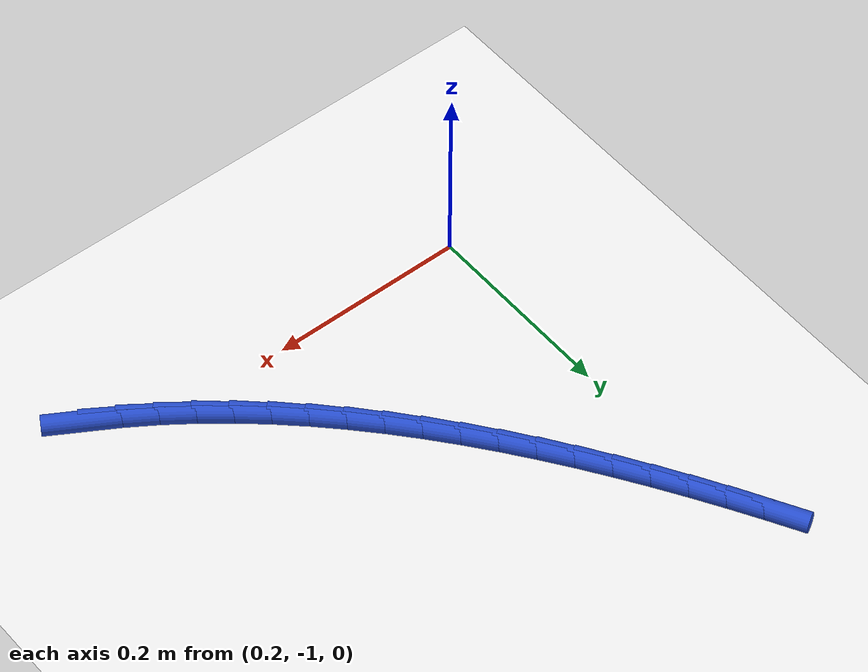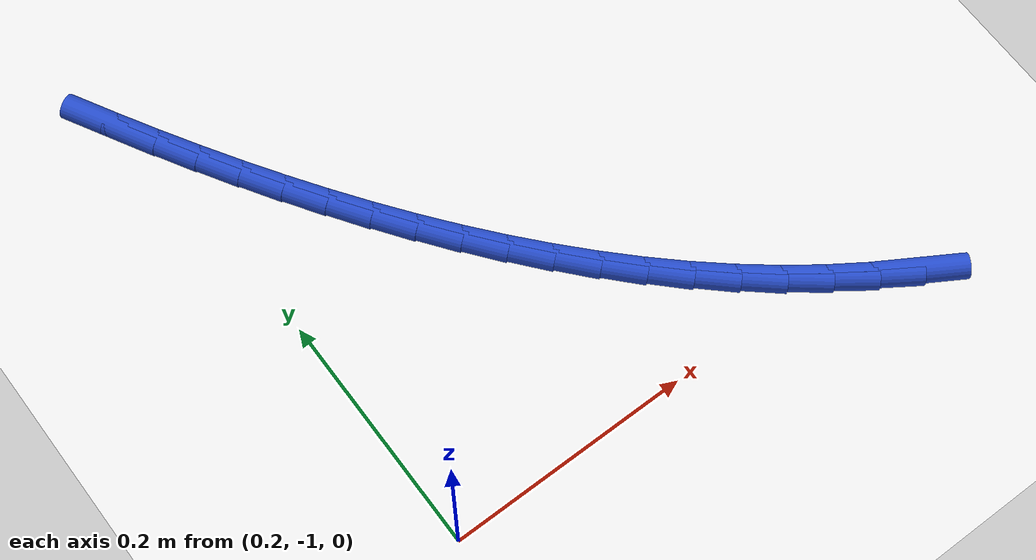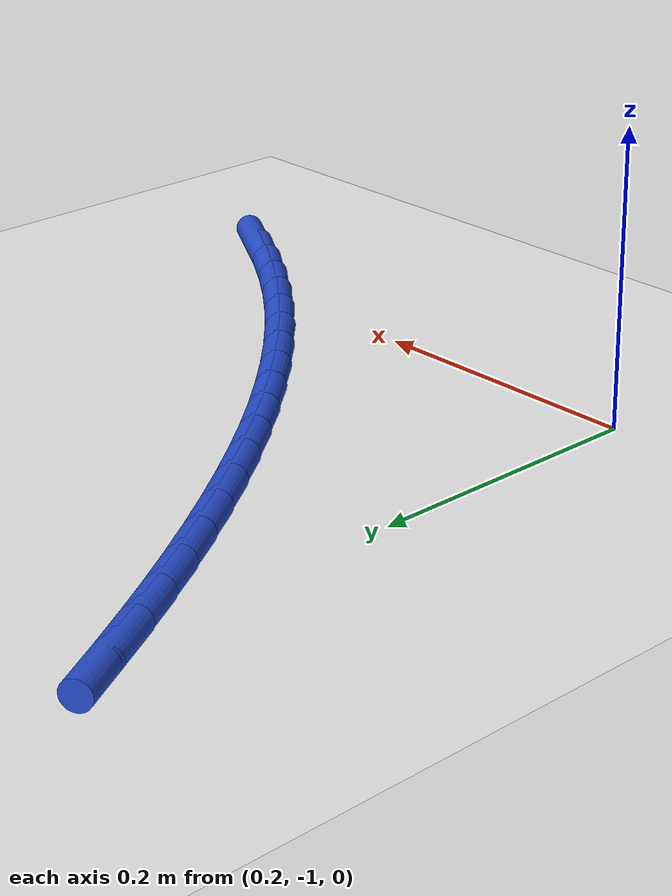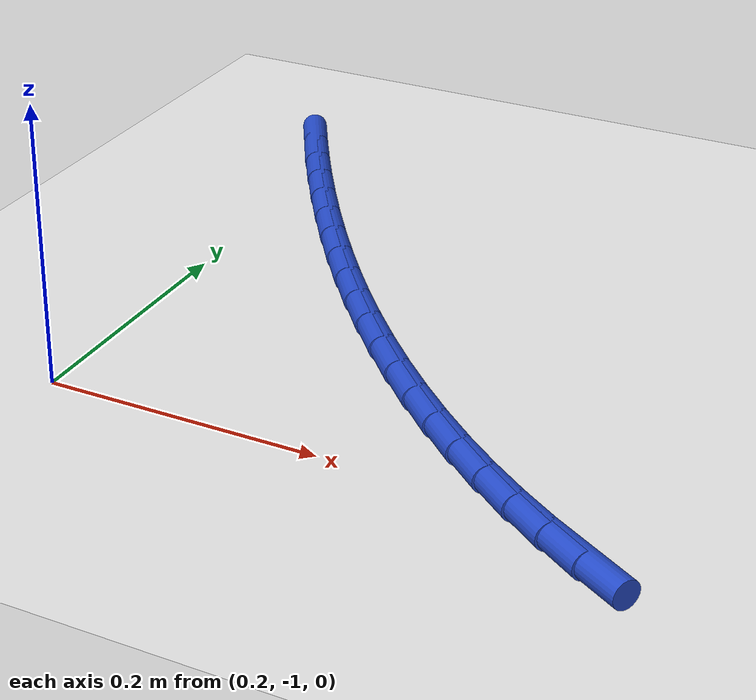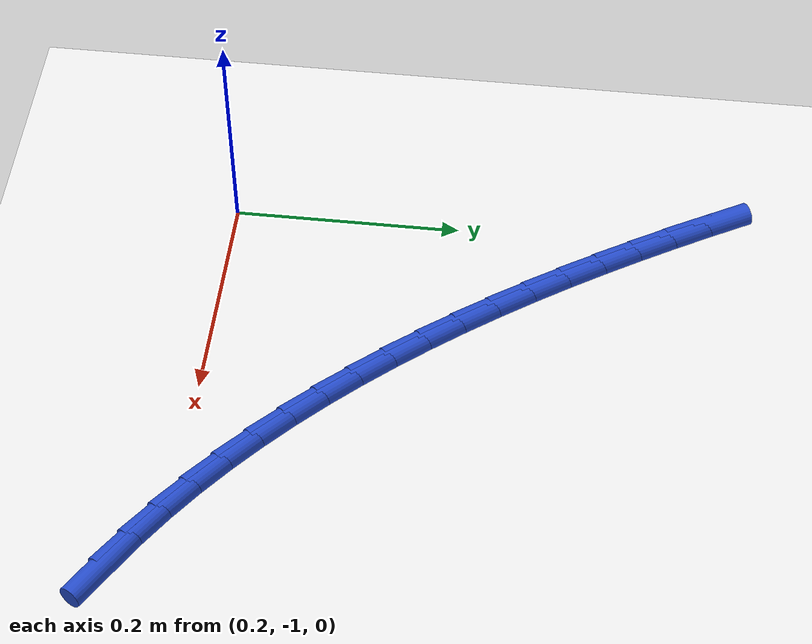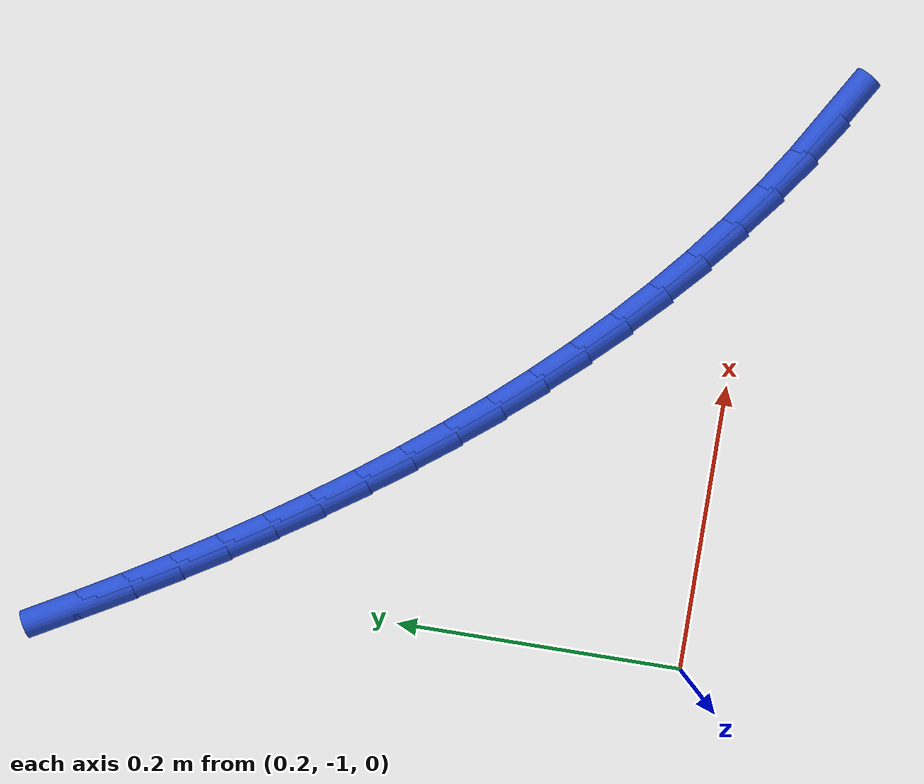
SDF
<sdf version="1.6">
 <world name="default">
  <model name="ground_plane">
   <static>1</static>
   <link name="link">
    <collision name="collision">
     <geometry><plane><normal>0 0 1</normal><size>100 100</size></plane></geometry>
     <surface><friction><ode><mu>100</mu><mu2>50</mu2></ode></friction></surface>
    </collision>
    <visual name="visual">
     <cast_shadows>0</cast_shadows>
     <geometry><plane><normal>0 0 1</normal><size>100 100</size></plane></geometry>
     <material>
      <script><uri>file://media/materials/scripts/gazebo.material</uri><name>Gazebo/WhiteGlow</name></script>
     </material>
    </visual>
   </link>
  </model>
  <model name="line">
   <link name="link_194">
    <pose>0.5925132479212099 -1.0413017699526166 0.01 0 1.57 -0.540809850300254</pose>
    <collision name="collision">
     <geometry><cylinder><radius>0.01</radius><length>0.08</length></cylinder></geometry>
    </collision>
    <visual name="visual">
     <material>
      <script><name>Gazebo/Blue</name><uri>file://media/materials/scripts/gazebo.material</uri></script>
     </material>
     <geometry><cylinder><radius>0.01</radius><length>0.08</length></cylinder></geometry>
    </visual>
   </link>
   <link name="link_195">
    <pose>0.5634689339717462 -1.0238597590396568 0.01 0 1.57 -0.5872207325241273</pose>
    <collision name="collision">
     <geometry><cylinder><radius>0.01</radius><length>0.08</length></cylinder></geometry>
    </collision>
    <visual name="visual">
     <material>
      <script><name>Gazebo/Blue</name><uri>file://media/materials/scripts/gazebo.material</uri></script>
     </material>
     <geometry><cylinder><radius>0.01</radius><length>0.08</length></cylinder></geometry>
    </visual>
   </link>
   <link name="link_196">
    <pose>0.5352302297652717 -1.0050658315512742 0.01 0 1.57 -0.6313812085972402</pose>
    <collision name="collision">
     <geometry><cylinder><radius>0.01</radius><length>0.08</length></cylinder></geometry>
    </collision>
    <visual name="visual">
     <material>
      <script><name>Gazebo/Blue</name><uri>file://media/materials/scripts/gazebo.material</uri></script>
     </material>
     <geometry><cylinder><radius>0.01</radius><length>0.08</length></cylinder></geometry>
    </visual>
   </link>
   <link name="link_197">
    <pose>0.5077803232742398 -0.9849935723686256 0.01 0 1.57 -0.673245946633064</pose>
    <collision name="collision">
     <geometry><cylinder><radius>0.01</radius><length>0.08</length></cylinder></geometry>
    </collision>
    <visual name="visual">
     <material>
      <script><name>Gazebo/Blue</name><uri>file://media/materials/scripts/gazebo.material</uri></script>
     </material>
     <geometry><cylinder><radius>0.01</radius><length>0.08</length></cylinder></geometry>
    </visual>
   </link>
   <link name="link_198">
    <pose>0.4811024024711068 -0.9637165663728688 0.01 0 1.57 -0.7128068688520868</pose>
    <collision name="collision">
     <geometry><cylinder><radius>0.01</radius><length>0.08</length></cylinder></geometry>
    </collision>
    <visual name="visual">
     <material>
      <script><name>Gazebo/Blue</name><uri>file://media/materials/scripts/gazebo.material</uri></script>
     </material>
     <geometry><cylinder><radius>0.01</radius><length>0.08</length></cylinder></geometry>
    </visual>
   </link>
   <link name="link_199">
    <pose>0.45517965532832577 -0.9413083984451596 0.01 0 1.57 -0.7500863129420505</pose>
    <collision name="collision">
     <geometry><cylinder><radius>0.01</radius><length>0.08</length></cylinder></geometry>
    </collision>
    <visual name="visual">
     <material>
      <script><name>Gazebo/Blue</name><uri>file://media/materials/scripts/gazebo.material</uri></script>
     </material>
     <geometry><cylinder><radius>0.01</radius><length>0.08</length></cylinder></geometry>
    </visual>
   </link>
   <link name="link_200">
    <pose>0.4299952698183514 -0.9178426534666551 0.01 0 1.57 -0.7851303640272581</pose>
    <collision name="collision">
     <geometry><cylinder><radius>0.01</radius><length>0.08</length></cylinder></geometry>
    </collision>
    <visual name="visual">
     <material>
      <script><name>Gazebo/Blue</name><uri>file://media/materials/scripts/gazebo.material</uri></script>
     </material>
     <geometry><cylinder><radius>0.01</radius><length>0.08</length></cylinder></geometry>
    </visual>
   </link>
   <link name="link_201">
    <pose>0.4055324339136374 -0.8933929163185121 0.01 0 1.57 -0.8180027170327109</pose>
    <collision name="collision">
     <geometry><cylinder><radius>0.01</radius><length>0.08</length></cylinder></geometry>
    </collision>
    <visual name="visual">
     <material>
      <script><name>Gazebo/Blue</name><uri>file://media/materials/scripts/gazebo.material</uri></script>
     </material>
     <geometry><cylinder><radius>0.01</radius><length>0.08</length></cylinder></geometry>
    </visual>
   </link>
   <link name="link_202">
    <pose>0.3817743355866392 -0.868032771881888 0.01 0 1.57 -0.8487792734045589</pose>
    <collision name="collision">
     <geometry><cylinder><radius>0.01</radius><length>0.08</length></cylinder></geometry>
    </collision>
    <visual name="visual">
     <material>
      <script><name>Gazebo/Blue</name><uri>file://media/materials/scripts/gazebo.material</uri></script>
     </material>
     <geometry><cylinder><radius>0.01</radius><length>0.08</length></cylinder></geometry>
    </visual>
   </link>
   <link name="link_203">
    <pose>0.3587041628098108 -0.8418358050379394 0.01 0 1.57 -0.87754355319927</pose>
    <collision name="collision">
     <geometry><cylinder><radius>0.01</radius><length>0.08</length></cylinder></geometry>
    </collision>
    <visual name="visual">
     <material>
      <script><name>Gazebo/Blue</name><uri>file://media/materials/scripts/gazebo.material</uri></script>
     </material>
     <geometry><cylinder><radius>0.01</radius><length>0.08</length></cylinder></geometry>
    </visual>
   </link>
   <link name="link_204">
    <pose>0.3363051035556064 -0.8148756006678229 0.01 0 1.57 -0.9043829161176119</pose>
    <collision name="collision">
     <geometry><cylinder><radius>0.01</radius><length>0.08</length></cylinder></geometry>
    </collision>
    <visual name="visual">
     <material>
      <script><name>Gazebo/Blue</name><uri>file://media/materials/scripts/gazebo.material</uri></script>
     </material>
     <geometry><cylinder><radius>0.01</radius><length>0.08</length></cylinder></geometry>
    </visual>
   </link>
   <link name="link_205">
    <pose>0.31456034579648035 -0.7872257436526959 0.01 0 1.57 -0.9293855294230614</pose>
    <collision name="collision">
     <geometry><cylinder><radius>0.01</radius><length>0.08</length></cylinder></geometry>
    </collision>
    <visual name="visual">
     <material>
      <script><name>Gazebo/Blue</name><uri>file://media/materials/scripts/gazebo.material</uri></script>
     </material>
     <geometry><cylinder><radius>0.01</radius><length>0.08</length></cylinder></geometry>
    </visual>
   </link>
   <link name="link_206">
    <pose>0.29345307750488653 -0.7589598188737138 0.01 0 1.57 -0.9526379902733099</pose>
    <collision name="collision">
     <geometry><cylinder><radius>0.01</radius><length>0.08</length></cylinder></geometry>
    </collision>
    <visual name="visual">
     <material>
      <script><name>Gazebo/Blue</name><uri>file://media/materials/scripts/gazebo.material</uri></script>
     </material>
     <geometry><cylinder><radius>0.01</radius><length>0.08</length></cylinder></geometry>
    </visual>
   </link>
   <link name="link_207">
    <pose>0.27296648665328044 -0.7301514112120355 0.01 0 1.57 -0.9742234977361675</pose>
    <collision name="collision">
     <geometry><cylinder><radius>0.01</radius><length>0.08</length></cylinder></geometry>
    </collision>
    <visual name="visual">
     <material>
      <script><name>Gazebo/Blue</name><uri>file://media/materials/scripts/gazebo.material</uri></script>
     </material>
     <geometry><cylinder><radius>0.01</radius><length>0.08</length></cylinder></geometry>
    </visual>
   </link>
   <link name="link_208">
    <pose>0.25308376121411585 -0.7008741055488169 0.01 0 1.57 -0.9942204693728723</pose>
    <collision name="collision">
     <geometry><cylinder><radius>0.01</radius><length>0.08</length></cylinder></geometry>
    </collision>
    <visual name="visual">
     <material>
      <script><name>Gazebo/Blue</name><uri>file://media/materials/scripts/gazebo.material</uri></script>
     </material>
     <geometry><cylinder><radius>0.01</radius><length>0.08</length></cylinder></geometry>
    </visual>
   </link>
   <link name="link_209">
    <pose>0.23378808915984708 -0.6712014867652151 0.01 0 1.57 -1.012701503780053</pose>
    <collision name="collision">
     <geometry><cylinder><radius>0.01</radius><length>0.08</length></cylinder></geometry>
    </collision>
    <visual name="visual">
     <material>
      <script><name>Gazebo/Blue</name><uri>file://media/materials/scripts/gazebo.material</uri></script>
     </material>
     <geometry><cylinder><radius>0.01</radius><length>0.08</length></cylinder></geometry>
    </visual>
   </link>
   <link name="link_210">
    <pose>0.2150626584629281 -0.641207139742386 0.01 0 1.57 -1.029732600260657</pose>
    <collision name="collision">
     <geometry><cylinder><radius>0.01</radius><length>0.08</length></cylinder></geometry>
    </collision>
    <visual name="visual">
     <material>
      <script><name>Gazebo/Blue</name><uri>file://media/materials/scripts/gazebo.material</uri></script>
     </material>
     <geometry><cylinder><radius>0.01</radius><length>0.08</length></cylinder></geometry>
    </visual>
   </link>
   <link name="link_211">
    <pose>0.19689065709581413 -0.6109646493614879 0.01 0 1.57 -1.045372557382723</pose>
    <collision name="collision">
     <geometry><cylinder><radius>0.01</radius><length>0.08</length></cylinder></geometry>
    </collision>
    <visual name="visual">
     <material>
      <script><name>Gazebo/Blue</name><uri>file://media/materials/scripts/gazebo.material</uri></script>
     </material>
     <geometry><cylinder><radius>0.01</radius><length>0.08</length></cylinder></geometry>
    </visual>
   </link>
   <link name="link_212">
    <pose>0.17925527303095917 -0.5805476005036773 0.01 0 1.57 -1.0596724820052723</pose>
    <collision name="collision">
     <geometry><cylinder><radius>0.01</radius><length>0.08</length></cylinder></geometry>
    </collision>
    <visual name="visual">
     <material>
      <script><name>Gazebo/Blue</name><uri>file://media/materials/scripts/gazebo.material</uri></script>
     </material>
     <geometry><cylinder><radius>0.01</radius><length>0.08</length></cylinder></geometry>
    </visual>
   </link>
  </model>
 </world>
</sdf>
